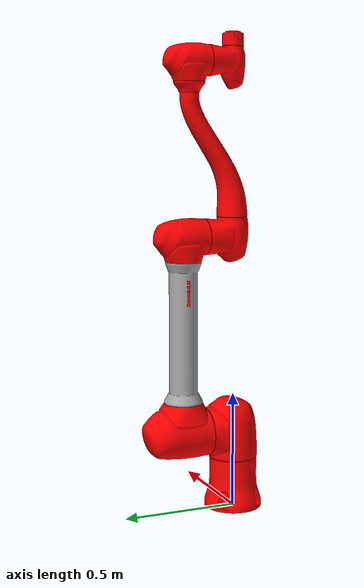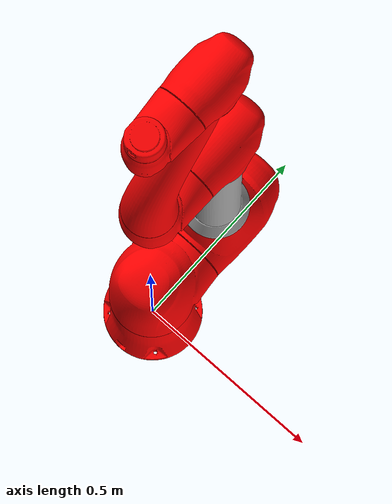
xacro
<?xml version="1.0"?>
<robot xmlns:xacro="http://www.ros.org/wiki/xacro" name="h2017">
    <xacro:arg name="initial_positions_file" default="initial_positions.yaml" />
    <link name="world"/>
    <joint name="world_fixed" type="fixed">
        <origin xyz="0 0 0" rpy="0 0 0"/>
        <parent link="world"/>
        <child link="base_link"/>
    </joint>
    <!-- Import h2017 urdf file -->
    <xacro:include filename="$(find dsr_description2)/urdf/h2017.urdf" />

    <!-- Import h2017 ros2_control description -->

    <xacro:include filename="dsr.ros2_control.xacro" />

    <xacro:dsr_moveit_ros2_control name="DSRFakeSystem" initial_positions_file="$(arg initial_positions_file)"/>
</robot>

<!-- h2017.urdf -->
<robot name="h2017" xmlns:xacro="http://www.ros.org/wiki/xacro">
		<link name="base_link">
			<inertial>
				<mass value="8.537"/>
				<origin xyz="1.8e-05   -0.002377    0.095608"/>
				<inertia ixx="0.079499" ixy="2.9382e-05" ixz="1.7529e-05" iyy="0.076993"
					iyz="-0.0009938"
					izz="0.067833"/>
				</inertial>
				<collision>
					<origin rpy="0 0 0" xyz="0 0 0" />
					<geometry>
						<mesh filename="package://dsr_description2/meshes/h2017_collision/H2017_0_0.dae" scale="0.001 0.001 0.001" />
					</geometry>
				</collision>
				<visual>
					<origin rpy="0 0 0" xyz="0 0 0" />
					<geometry>
						<mesh filename="package://dsr_description2/meshes/h2017_white/H2017_0_0.dae" scale="0.001 0.001 0.001" />
					</geometry>
				</visual>
			</link>
		<link name="base"/>
		<joint name="base_link-base" type="fixed">
			<origin rpy="0 0 0" xyz="0 0 0.450"/>
			<parent link="base_link"/>
			<child link="base"/>
		</joint>
		<!-- joint 1 -->
		<joint name="joint_1" type="revolute">
			<parent link="base_link" />
			<child link="link_1" />
			<origin rpy="0 0 0" xyz="0 0 0.3443" />
			<axis xyz="0 0 1" />
			<limit effort="372" lower="-6.2832" upper="6.2832" velocity="1.7453"/>
			<dynamics friction="0" />
		</joint>
		<link name="link_1">
			<inertial>
				<mass value="20.253"/>
				<origin xyz="-5e-05     0.11854   -0.059979"/>
				<inertia ixx="0.5323" ixy="-6.2817e-05" ixz="-7.5664e-06" iyy="0.2807" iyz="-0.14899"
					izz="0.34857"/>
			</inertial>
            <collision>
				<origin rpy="0 0 0" xyz="0 0 0" />
				<geometry>
					<mesh filename="package://dsr_description2/meshes/h2017_collision/H2017_1_0.dae" scale="0.001 0.001 0.001" />
				</geometry>
			</collision>
			<visual>
				<origin rpy="0 0 0" xyz="0 0 0" />
				<geometry>
					<mesh filename="package://dsr_description2/meshes/h2017_white/H2017_1_0.dae" scale="0.001 0.001 0.001" />
				</geometry>
			</visual>
		</link>
		<!-- joint2 -->
		<joint name="joint_2" type="revolute">
			<parent link="link_1" />
			<child link="link_2" />
			<origin rpy="0 -1.571 -1.571" xyz="0 0.0099 0" />
			<axis xyz="0 0 1" />
			<limit effort="372" lower="-2.1817" upper="2.1817" velocity="1.3963"/>
			<dynamics friction="0" />
		</joint>
		<link name="link_2">
			<inertial>
				<mass value="28.536"/>
				<origin xyz="0.38055    -1.7e-05     0.22527"/>
				<inertia ixx="0.15388" ixy="-0.00022213" ixz="0.11801" iyy="3.0424" iyz="-5.3325e-05"
					izz="3.0015"/>
			</inertial>
            <collision>
				<origin rpy="0 0 0" xyz="0 0 0" />
				<geometry>
					<mesh filename="package://dsr_description2/meshes/h2017_collision/H2017_2_0.dae" scale="0.001 0.001 0.001" />
				</geometry>
			</collision>
			<visual>
				<origin rpy="0 0 0" xyz="0 0 0" />
				<geometry>
					<mesh filename="package://dsr_description2/meshes/h2017_white/H2017_2_0.dae" scale="0.001 0.001 0.001" />
				</geometry>
			</visual>
			<collision>
				<origin rpy="0 0 0" xyz="0 0 0" />
				<geometry>
					<mesh filename="package://dsr_description2/meshes/h2017_collision/H2017_2_1.dae" scale="0.001 0.001 0.001" />
				</geometry>
			</collision>
			<visual>
				<origin rpy="0 0 0" xyz="0 0 0" />
				<geometry>
					<mesh filename="package://dsr_description2/meshes/h2017_white/H2017_2_1.dae" scale="0.001 0.001 0.001" />
				</geometry>
			</visual>
			<collision>
				<origin rpy="0 0 0" xyz="0 0 0" />
				<geometry>
					<mesh filename="package://dsr_description2/meshes/h2017_collision/H2017_2_2.dae" scale="0.001 0.001 0.001" />
				</geometry>
			</collision>
			<visual>
				<origin rpy="0 0 0" xyz="0 0 0" />
				<geometry>
					<mesh filename="package://dsr_description2/meshes/h2017_white/H2017_2_2.dae" scale="0.001 0.001 0.001" />
				</geometry>
			</visual>
		</link>
		<!-- joint3 -->
		<joint name="joint_3" type="revolute">
			<parent link="link_2" />
			<child link="link_3" />
			<origin rpy="0 0 1.571" xyz="0.845 0 0" />
			<axis xyz="0 0 1" />
			<limit effort="372" lower="-2.7925" upper="2.7925" velocity="1.7453"/>
			<dynamics friction="0" />
		</joint>
		<link name="link_3">
			<inertial>
				<mass value="6.421"/>
				<origin xyz="-5.9e-05   -0.008325    0.049527"/>
				<inertia ixx="0.04463" ixy="3.0207e-05" ixz="-1.0987e-05" iyy="0.041031"
					iyz="-0.0029929"
					izz="0.028983"/>
			</inertial>
			<collision>
				<origin rpy="0 0 0" xyz="0 0 0" />
				<geometry>
					<mesh filename="package://dsr_description2/meshes/h2017_collision/H2017_3_0.dae" scale="0.001 0.001 0.001" />
				</geometry>
			</collision>
            <visual>
				<origin rpy="0 0 0" xyz="0 0 0" />
				<geometry>
					<mesh filename="package://dsr_description2/meshes/h2017_white/H2017_3_0.dae" scale="0.001 0.001 0.001" />
				</geometry>
			</visual>
		</link>
		<!-- joint4 -->
		<joint name="joint_4" type="revolute">
			<parent link="link_3" />
			<child link="link_4" />
			<origin rpy="1.571 0 0" xyz="0 -0.734 0" />
			<axis xyz="0 0 1" />
			<limit effort="163" lower="-6.2832" upper="6.2832" velocity="3.1416"/>
			<dynamics friction="0" />
		</joint>
		<link name="link_4">
			<inertial>
				<mass value="7.59"/>
				<origin xyz="7.7e-05     0.12896    -0.22056"/>
				<inertia ixx="0.60329" ixy="-6.8213e-05" ixz="-0.00013439" iyy="0.54966" iyz="-0.159"
					izz="0.078126"/>
			</inertial>
            <collision>
				<origin rpy="0 0 0" xyz="0 0 0" />
				<geometry>
					<mesh filename="package://dsr_description2/meshes/h2017_collision/H2017_4_0.dae" scale="0.001 0.001 0.001" />
				</geometry>
			</collision>
			<visual>
				<origin rpy="0 0 0" xyz="0 0 0" />
				<geometry>
					<mesh filename="package://dsr_description2/meshes/h2017_white/H2017_4_0.dae" scale="0.001 0.001 0.001" />
				</geometry>
			</visual>
			<collision>
				<origin rpy="0 0 0" xyz="0 0 0" />
				<geometry>
					<mesh filename="package://dsr_description2/meshes/h2017_collision/H2017_4_1.dae" scale="0.001 0.001 0.001" />
				</geometry>
			</collision>
			<visual>
				<origin rpy="0 0 0" xyz="0 0 0" />
				<geometry>
					<mesh filename="package://dsr_description2/meshes/h2017_white/H2017_4_1.dae" scale="0.001 0.001 0.001" />
				</geometry>
			</visual>
		</link>
		<!-- joint5 -->
		<joint name="joint_5" type="revolute">
			<parent link="link_4" />
			<child link="link_5" />
			<origin rpy="-1.571 0 0" xyz="0 0 0" />
			<axis xyz="0 0 1" />
			<limit effort="96" lower="-6.2832" upper="6.2832" velocity="3.1416"/>
			<dynamics friction="0" />
		</joint>
		<link name="link_5">
			<inertial>
				<mass value="4.099"/>
				<origin xyz="-6.1e-05   -0.000589    0.048812"/>
				<inertia ixx="0.021303" ixy="2.545e-05" ixz="-4.3439e-06" iyy="0.023894"
					iyz="6.0426e-05"
					izz="0.014587"/>
			</inertial>
            <collision>
				<origin rpy="0 0 0" xyz="0 0 0" />
				<geometry>
					<mesh filename="package://dsr_description2/meshes/h2017_collision/H2017_5_0.dae" scale="0.001 0.001 0.001" />
				</geometry>
			</collision>
			<visual>
				<origin rpy="0 0 0" xyz="0 0 0" />
				<geometry>
					<mesh filename="package://dsr_description2/meshes/h2017_white/H2017_5_0.dae" scale="0.001 0.001 0.001" />
				</geometry>
			</visual>
		</link>
		<!-- joint6 -->
		<joint name="joint_6" type="revolute">
			<parent link="link_5" />
			<child link="link_6" />
			<origin rpy="1.571 0 0" xyz="0 -0.121 0" />
			<axis xyz="0 0 1" />
			<limit effort="50" lower="-6.2832" upper="6.2832" velocity="3.927"/>
			<dynamics friction="0" />
		</joint>
		<link name="link_6">
			<inertial>
				<mass value="0.897"/>
				<origin xyz="-3.3e-05     3.6e-05   -0.049443"/>
				<inertia ixx="0.0086582" ixy="7.8198e-06" ixz="2.2495e-06" iyy="0.0068184"
					iyz="5.6115e-06"
					izz="0.0080729"/>
			</inertial>
			<collision>
				<origin rpy="0 0 0" xyz="0 0 0" />
				<geometry>
					<mesh filename="package://dsr_description2/meshes/h2017_collision/H2017_6_0.dae" scale="0.001 0.001 0.001" />
				</geometry>
			</collision>
			<visual>
				<origin rpy="0 0 0" xyz="0 0 0" />
				<geometry>
					<mesh filename="package://dsr_description2/meshes/h2017_white/H2017_6_0.dae" scale="0.001 0.001 0.001" />
				</geometry>
			</visual>
		</link>
</robot>
